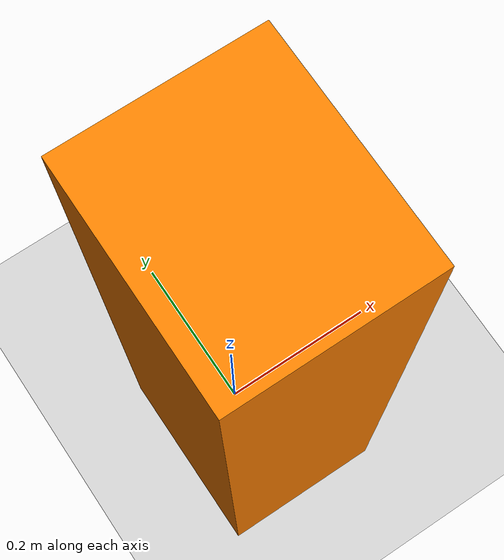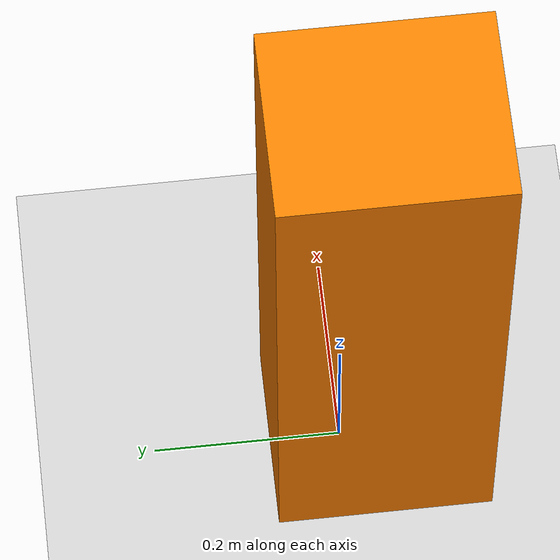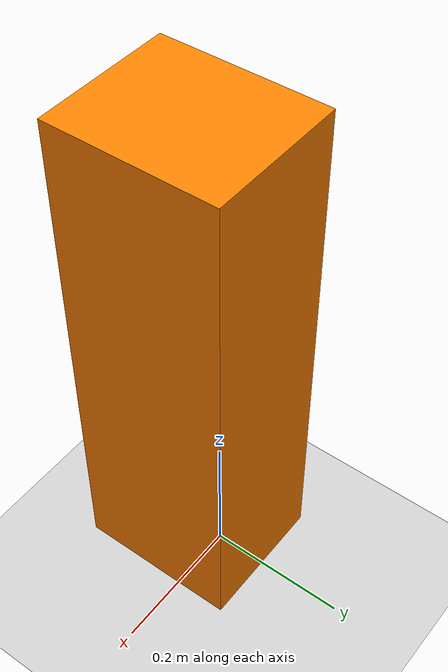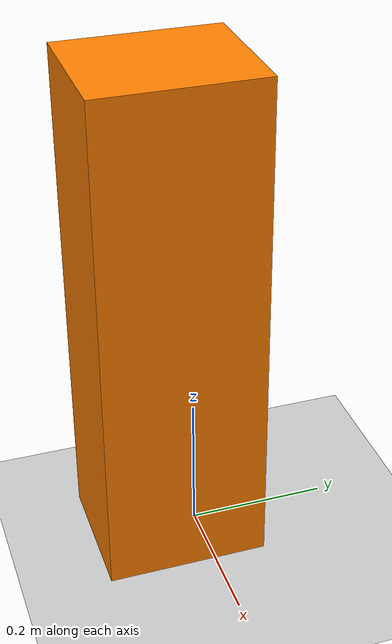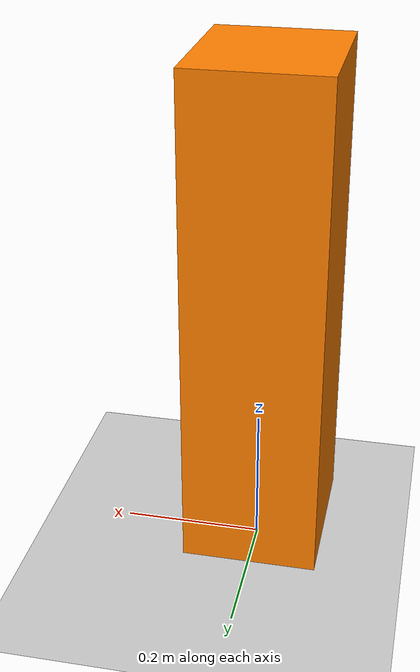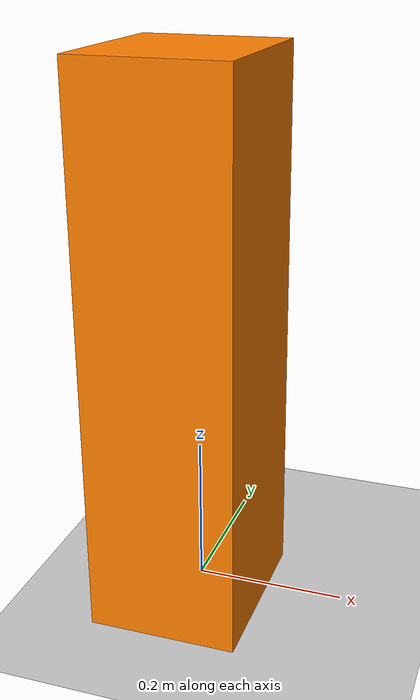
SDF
<?xml version="1.0" ?>
<!-- |    This document was autogenerated by xacro from panda_description/worlds/homography.world.xacro | -->
<!-- |    EDITING THIS FILE BY HAND IS NOT RECOMMENDED                                 | -->
<sdf version="1.9">
  <world name="homography">
    <gravity>0 0 -9.8</gravity>
    <magnetic_field>6e-06 2.3e-05 -4.2e-05</magnetic_field>
    <atmosphere type="adiabatic"/>
    <physics type="ode">
      <max_step_size>0.001</max_step_size>
      <real_time_factor>1</real_time_factor>
      <real_time_update_rate>1000</real_time_update_rate>
    </physics>
    <!-- ================= SCENE CONFIGURATION ================= -->
    <scene>
      <ambient>0.6 0.6 0.6 1</ambient>
      <background>0.7 0.7 0.7 1</background>
      <shadows>false</shadows>
      <grid>false</grid>
    </scene>
    <!-- ================= PEDESTAL ================= -->
    <model name="pedestal">
      <static>true</static>
      <pose>0 -0.04 0 0 0 0</pose>
      <link name="link">
        <pose>0 0 0.3625 0 0 1.57079632675</pose>
        <collision name="collision">
          <pose>0 0 0 0 0 0</pose>
          <geometry>
            <box>
              <size>0.23 0.195 0.725</size>
            </box>
          </geometry>
        </collision>
        <visual name="visual">
          <geometry>
            <box>
              <size>0.23 0.195 0.725</size>
            </box>
          </geometry>
          <material>
            <ambient>1 0.5 0 1</ambient>
            <diffuse>1 0.5 0 1</diffuse>
          </material>
          <meta>
            <layer>1</layer>
          </meta>
        </visual>
      </link>
    </model>
    <!-- ================= REGULAR TABLE 1 ================= -->
    <model name="table_1">
      <static>true</static>
      <pose>0 1.175 0 0 0 0</pose>
      <self_collide>false</self_collide>
      <link name="link">
        <collision name="collision">
          <!-- Shift collision box up to match visual's origin (height/2) -->
          <pose>0 0 0.3625 0 0 0</pose>
          <geometry>
            <box>
              <size>2 2 0.725</size>
            </box>
          </geometry>
        </collision>
      </link>
    </model>
    <!-- ================= GROUND PLANE ================= -->
    <model name="ground_plane">
      <static>true</static>
      <link name="link">
        <collision name="collision">
          <geometry>
            <plane>
              <normal>0 0 1</normal>
              <size>1 1</size>
            </plane>
          </geometry>
          <surface>
            <friction>
              <ode/>
            </friction>
            <bounce/>
            <contact/>
          </surface>
        </collision>
        <visual name="visual">
          <geometry>
            <plane>
              <normal>0 0 1</normal>
              <size>100 100</size>
            </plane>
          </geometry>
          <material>
            <ambient>0.8 0.8 0.8 1</ambient>
            <diffuse>0.8 0.8 0.8 1</diffuse>
            <specular>0.8 0.8 0.8 1</specular>
          </material>
        </visual>
        <pose>0 0 0 0 -0 0</pose>
        <inertial>
          <pose>0 0 0 0 -0 0</pose>
          <mass>1</mass>
          <inertia>
            <ixx>1</ixx>
            <ixy>0</ixy>
            <ixz>0</ixz>
            <iyy>1</iyy>
            <iyz>0</iyz>
            <izz>1</izz>
          </inertia>
        </inertial>
        <enable_wind>false</enable_wind>
      </link>
      <pose>0 0 0 0 -0 0</pose>
      <self_collide>false</self_collide>
    </model>
    <!-- ================= OPERATING ROOM LIGHTING ================= -->
    <!-- Main overhead light (surgical light) -->
    <light name="overhead_light" type="directional">
      <pose>0 0 3 0 0 0</pose>
      <cast_shadows>false</cast_shadows>
      <intensity>0.2</intensity>
      <direction>0 0 -1</direction>
      <diffuse>0.95 0.95 0.95 1</diffuse>
      <specular>0.5 0.5 0.5 1</specular>
    </light>
    <!-- Fill light from the front -->
    <!-- Fill light from left -->
    <light name="left_fill" type="directional">
      <pose>-1 0 1.5 0 0 0.3</pose>
      <cast_shadows>false</cast_shadows>
      <intensity>0.2</intensity>
      <direction>0.5 0 -0.5</direction>
      <diffuse>0.85 0.85 0.85 1</diffuse>
    </light>
    <!-- Fill light from right -->
    <light name="right_fill" type="directional">
      <pose>1 0 1.5 0 0 -0.3</pose>
      <cast_shadows>false</cast_shadows>
      <intensity>0.2</intensity>
      <direction>-0.5 0 -0.5</direction>
      <diffuse>0.85 0.85 0.85 1</diffuse>
    </light>
    <!-- Ambient fill from below (to reduce harsh shadows on instrument bottoms) -->
    <light name="below_fill" type="directional">
      <pose>0 0 -1 0 0 3.14</pose>
      <cast_shadows>false</cast_shadows>
      <intensity>0.2</intensity>
      <direction>0 0 1</direction>
      <diffuse>0.7 0.7 0.7 1</diffuse>
    </light>
    <!-- Optional: Warm accent light for depth perception -->
    <light name="warm_accent" type="directional">
      <pose>0.5 0.5 2 0 0.2 0.5</pose>
      <cast_shadows>false</cast_shadows>
      <intensity>0.2</intensity>
      <diffuse>1 0.95 0.85 1</diffuse>
    </light>
    <!-- apalah king -->
    <!-- Surgical light - point light for more realistic illumination -->
    <!-- Secondary surgical light for shadowless effect -->
  </world>
</sdf>
